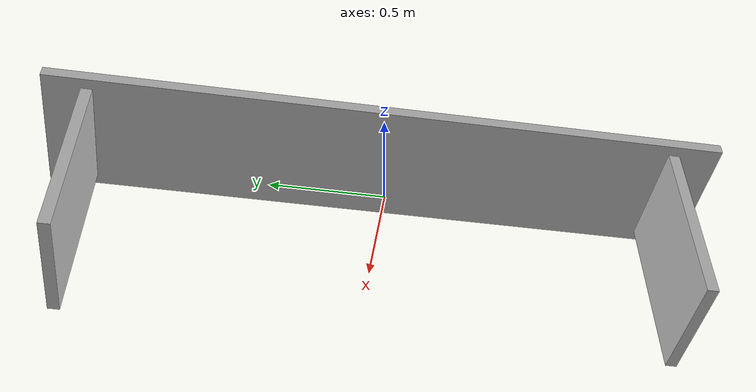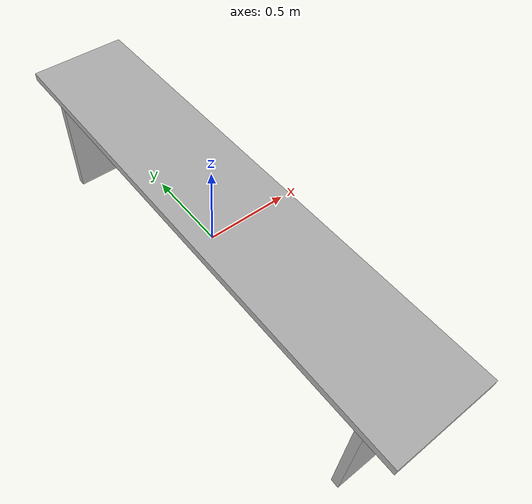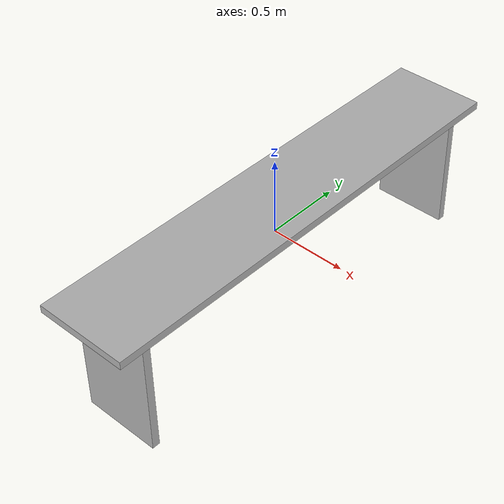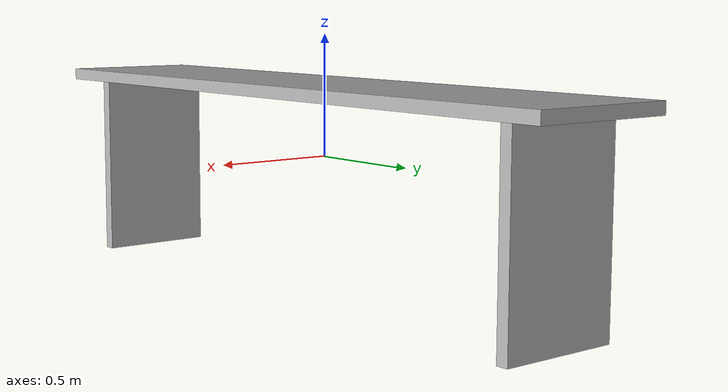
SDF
<?xml version='1.0'?>
<sdf version='1.7'>
  <model name='work_bench'>
    <static>1</static>
    <link name='base'>
      <pose>0.05 0 0 0 0 0</pose>
      <visual name='tabletop'>
        <pose>0 0 0.283333 0 0 0</pose>
        <geometry>
          <box><size>0.6 3 0.05</size></box>
        </geometry>
        <material>
          <ambient>1 0.549 0.001 1</ambient>
          <diffuse>0.7 0.7 0.7 1</diffuse>
        </material>
      </visual>
      <collision name='tabletop_collision'>
        <pose>0 0 0.283333 0 0 0</pose>
        <geometry>
          <box><size>0.6 3 0.05</size></box>
        </geometry>
      </collision>
      <visual name='side_left'>
        <pose>0 -1.29 -0.141667 0 0 0</pose>
        <geometry>
          <box><size>0.5 0.05 0.8</size></box>
        </geometry>
        <material>
          <ambient>0.2 0.2 0.2 1</ambient>
          <diffuse>0.7 0.7 0.7 1</diffuse>
        </material>
      </visual>
      <collision name='side_left_collision'>
        <pose>0 -1.29 -0.141667 0 0 0</pose>
        <geometry>
          <box><size>0.5 0.05 0.8</size></box>
        </geometry>
      </collision>
      <visual name='side_right'>
        <pose>0 1.31 -0.141667 0 0 0</pose>
        <geometry>
          <box><size>0.5 0.05 0.8</size></box>
        </geometry>
        <material>
          <ambient>0.2 0.2 0.2 1</ambient>
          <diffuse>0.7 0.7 0.7 1</diffuse>
        </material>
      </visual>
      <collision name='side_right_collision'>
        <pose>0 1.31 -0.141667 0 0 0</pose>
        <geometry>
          <box><size>0.5 0.05 0.8</size></box>
        </geometry>
      </collision>
    </link>
  </model>
</sdf>
